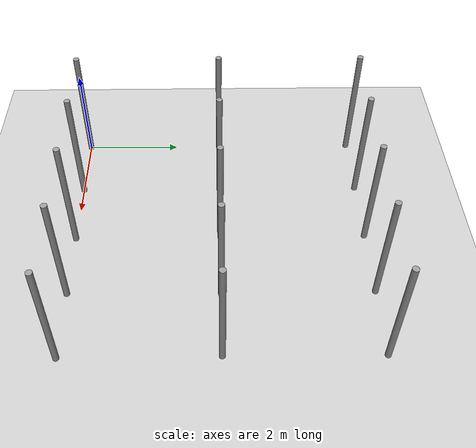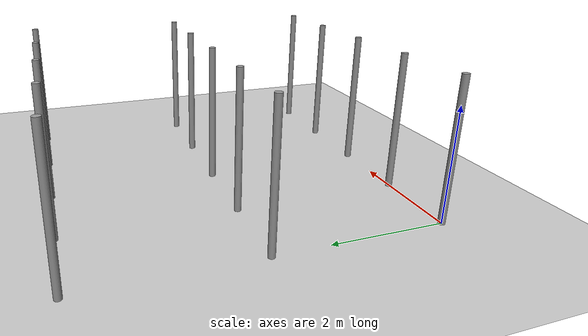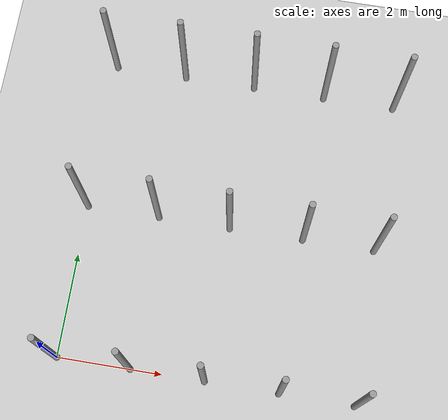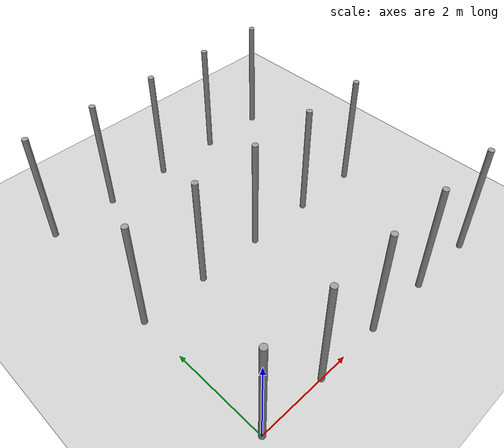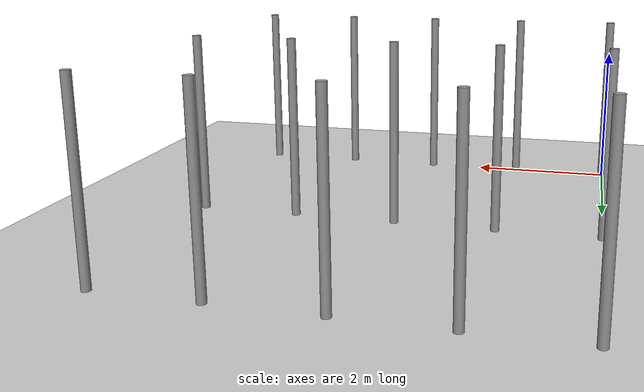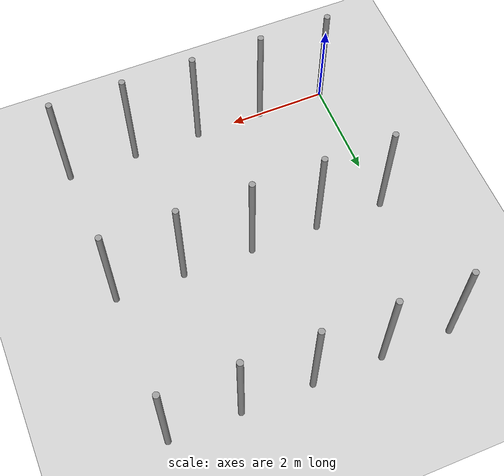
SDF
<sdf version="1.6">
 <world name="default">
  <model name="ground_plane">
   <static>1</static>
   <link name="link">
    <collision name="collision">
     <geometry><plane><normal>0 0 1</normal><size>100 100</size></plane></geometry>
     <surface><friction><ode><mu>100</mu><mu2>50</mu2></ode></friction></surface>
    </collision>
    <visual name="visual">
     <cast_shadows>0</cast_shadows>
     <geometry><plane><normal>0 0 1</normal><size>100 100</size></plane></geometry>
     <material>
      <script><uri>file://media/materials/scripts/gazebo.material</uri><name>Gazebo/Grey</name></script>
     </material>
    </visual>
   </link>
  </model>
  <model name="pole_8">
   <link name="link_0">
    <inertial>
     <mass>0.0364582</mass>
     <inertia>
      <ixx>0.00312124</ixx>
      <ixy>0</ixy>
      <ixz>0</ixz>
      <iyy>0.00312124</iyy>
      <iyz>0</iyz>
      <izz>0.00016615</izz>
     </inertia>
    </inertial>
    <visual name="visual">
     <geometry><cylinder><radius>0.06</radius><length>2.5</length></cylinder></geometry>
     <material>
      <lighting>1</lighting>
      <script><uri>file://media/materials/scripts/gazebo.material</uri><name>Gazebo/Grey</name></script>
      <ambient>0.3 0.3 0.3 1</ambient>
      <diffuse>0.7 0.7 0.7 1</diffuse>
      <specular>0.01 0.01 0.01 1</specular>
      <emissive>0 0 0 1</emissive>
      <shader type="vertex"><normal_map>__default__</normal_map></shader>
     </material>
    </visual>
    <collision name="collision">
     <geometry><cylinder><radius>0.06</radius><length>2.5</length></cylinder></geometry>
     <surface>
      <friction>
       <ode><mu>1</mu><mu2>1</mu2><fdir1>0 0 0</fdir1><slip1>0</slip1><slip2>0</slip2></ode>
       <torsional>
        <coefficient>1</coefficient>
        <patch_radius>0</patch_radius>
        <surface_radius>0</surface_radius>
        <use_patch_radius>1</use_patch_radius>
        <ode><slip>0</slip></ode>
       </torsional>
      </friction>
      <bounce><restitution_coefficient>0</restitution_coefficient><threshold>1e+06</threshold></bounce>
      <contact>
       <collide_without_contact>0</collide_without_contact>
       <collide_without_contact_bitmask>1</collide_without_contact_bitmask>
       <collide_bitmask>1</collide_bitmask>
       <ode>
        <soft_cfm>0</soft_cfm>
        <soft_erp>0.2</soft_erp>
        <kp>1e+13</kp>
        <kd>1</kd>
        <max_vel>0.01</max_vel>
        <min_depth>0</min_depth>
       </ode>
       <bullet>
        <split_impulse>1</split_impulse>
        <split_impulse_penetration_threshold>-0.01</split_impulse_penetration_threshold>
        <soft_cfm>0</soft_cfm>
        <soft_erp>0.2</soft_erp>
        <kp>1e+13</kp>
        <kd>1</kd>
       </bullet>
      </contact>
     </surface>
    </collision>
   </link>
   <static>0</static>
   <pose>1.40422 0.001389 1.24999 0 1e-06 -0.018586</pose>
  </model>
  <model name="pole_9">
   <link name="link_0">
    <inertial>
     <mass>0.0364582</mass>
     <inertia>
      <ixx>0.00312124</ixx>
      <ixy>0</ixy>
      <ixz>0</ixz>
      <iyy>0.00312124</iyy>
      <iyz>0</iyz>
      <izz>0.00016615</izz>
     </inertia>
    </inertial>
    <visual name="visual">
     <geometry><cylinder><radius>0.06</radius><length>2.5</length></cylinder></geometry>
     <material>
      <lighting>1</lighting>
      <script><uri>file://media/materials/scripts/gazebo.material</uri><name>Gazebo/Grey</name></script>
      <ambient>0.3 0.3 0.3 1</ambient>
      <diffuse>0.7 0.7 0.7 1</diffuse>
      <specular>0.01 0.01 0.01 1</specular>
      <emissive>0 0 0 1</emissive>
      <shader type="vertex"><normal_map>__default__</normal_map></shader>
     </material>
    </visual>
    <collision name="collision">
     <geometry><cylinder><radius>0.06</radius><length>2.5</length></cylinder></geometry>
     <surface>
      <friction>
       <ode><mu>1</mu><mu2>1</mu2><fdir1>0 0 0</fdir1><slip1>0</slip1><slip2>0</slip2></ode>
       <torsional>
        <coefficient>1</coefficient>
        <patch_radius>0</patch_radius>
        <surface_radius>0</surface_radius>
        <use_patch_radius>1</use_patch_radius>
        <ode><slip>0</slip></ode>
       </torsional>
      </friction>
      <bounce><restitution_coefficient>0</restitution_coefficient><threshold>1e+06</threshold></bounce>
      <contact>
       <collide_without_contact>0</collide_without_contact>
       <collide_without_contact_bitmask>1</collide_without_contact_bitmask>
       <collide_bitmask>1</collide_bitmask>
       <ode>
        <soft_cfm>0</soft_cfm>
        <soft_erp>0.2</soft_erp>
        <kp>1e+13</kp>
        <kd>1</kd>
        <max_vel>0.01</max_vel>
        <min_depth>0</min_depth>
       </ode>
       <bullet>
        <split_impulse>1</split_impulse>
        <split_impulse_penetration_threshold>-0.01</split_impulse_penetration_threshold>
        <soft_cfm>0</soft_cfm>
        <soft_erp>0.2</soft_erp>
        <kp>1e+13</kp>
        <kd>1</kd>
       </bullet>
      </contact>
     </surface>
    </collision>
   </link>
   <static>0</static>
   <pose>2.80805 0.001719 1.25 -1e-06 1e-06 -0.038742</pose>
  </model>
  <model name="pole_10">
   <link name="link_0">
    <inertial>
     <mass>0.0364582</mass>
     <inertia>
      <ixx>0.00312124</ixx>
      <ixy>0</ixy>
      <ixz>0</ixz>
      <iyy>0.00312124</iyy>
      <iyz>0</iyz>
      <izz>0.00016615</izz>
     </inertia>
    </inertial>
    <visual name="visual">
     <geometry><cylinder><radius>0.06</radius><length>2.5</length></cylinder></geometry>
     <material>
      <lighting>1</lighting>
      <script><uri>file://media/materials/scripts/gazebo.material</uri><name>Gazebo/Grey</name></script>
      <ambient>0.3 0.3 0.3 1</ambient>
      <diffuse>0.7 0.7 0.7 1</diffuse>
      <specular>0.01 0.01 0.01 1</specular>
      <emissive>0 0 0 1</emissive>
      <shader type="vertex"><normal_map>__default__</normal_map></shader>
     </material>
    </visual>
    <collision name="collision">
     <geometry><cylinder><radius>0.06</radius><length>2.5</length></cylinder></geometry>
     <surface>
      <friction>
       <ode><mu>1</mu><mu2>1</mu2><fdir1>0 0 0</fdir1><slip1>0</slip1><slip2>0</slip2></ode>
       <torsional>
        <coefficient>1</coefficient>
        <patch_radius>0</patch_radius>
        <surface_radius>0</surface_radius>
        <use_patch_radius>1</use_patch_radius>
        <ode><slip>0</slip></ode>
       </torsional>
      </friction>
      <bounce><restitution_coefficient>0</restitution_coefficient><threshold>1e+06</threshold></bounce>
      <contact>
       <collide_without_contact>0</collide_without_contact>
       <collide_without_contact_bitmask>1</collide_without_contact_bitmask>
       <collide_bitmask>1</collide_bitmask>
       <ode>
        <soft_cfm>0</soft_cfm>
        <soft_erp>0.2</soft_erp>
        <kp>1e+13</kp>
        <kd>1</kd>
        <max_vel>0.01</max_vel>
        <min_depth>0</min_depth>
       </ode>
       <bullet>
        <split_impulse>1</split_impulse>
        <split_impulse_penetration_threshold>-0.01</split_impulse_penetration_threshold>
        <soft_cfm>0</soft_cfm>
        <soft_erp>0.2</soft_erp>
        <kp>1e+13</kp>
        <kd>1</kd>
       </bullet>
      </contact>
     </surface>
    </collision>
   </link>
   <static>0</static>
   <pose>4.20397 0.001623 1.24999 -1e-06 0 -0.022289</pose>
  </model>
  <model name="pole_11">
   <link name="link_0">
    <inertial>
     <mass>0.0364582</mass>
     <inertia>
      <ixx>0.00312124</ixx>
      <ixy>0</ixy>
      <ixz>0</ixz>
      <iyy>0.00312124</iyy>
      <iyz>0</iyz>
      <izz>0.00016615</izz>
     </inertia>
    </inertial>
    <visual name="visual">
     <geometry><cylinder><radius>0.06</radius><length>2.5</length></cylinder></geometry>
     <material>
      <lighting>1</lighting>
      <script><uri>file://media/materials/scripts/gazebo.material</uri><name>Gazebo/Grey</name></script>
      <ambient>0.3 0.3 0.3 1</ambient>
      <diffuse>0.7 0.7 0.7 1</diffuse>
      <specular>0.01 0.01 0.01 1</specular>
      <emissive>0 0 0 1</emissive>
      <shader type="vertex"><normal_map>__default__</normal_map></shader>
     </material>
    </visual>
    <collision name="collision">
     <geometry><cylinder><radius>0.06</radius><length>2.5</length></cylinder></geometry>
     <surface>
      <friction>
       <ode><mu>1</mu><mu2>1</mu2><fdir1>0 0 0</fdir1><slip1>0</slip1><slip2>0</slip2></ode>
       <torsional>
        <coefficient>1</coefficient>
        <patch_radius>0</patch_radius>
        <surface_radius>0</surface_radius>
        <use_patch_radius>1</use_patch_radius>
        <ode><slip>0</slip></ode>
       </torsional>
      </friction>
      <bounce><restitution_coefficient>0</restitution_coefficient><threshold>1e+06</threshold></bounce>
      <contact>
       <collide_without_contact>0</collide_without_contact>
       <collide_without_contact_bitmask>1</collide_without_contact_bitmask>
       <collide_bitmask>1</collide_bitmask>
       <ode>
        <soft_cfm>0</soft_cfm>
        <soft_erp>0.2</soft_erp>
        <kp>1e+13</kp>
        <kd>1</kd>
        <max_vel>0.01</max_vel>
        <min_depth>0</min_depth>
       </ode>
       <bullet>
        <split_impulse>1</split_impulse>
        <split_impulse_penetration_threshold>-0.01</split_impulse_penetration_threshold>
        <soft_cfm>0</soft_cfm>
        <soft_erp>0.2</soft_erp>
        <kp>1e+13</kp>
        <kd>1</kd>
       </bullet>
      </contact>
     </surface>
    </collision>
   </link>
   <static>0</static>
   <pose>5.61623 0.001365 1.24999 -2e-06 -3e-06 -0.020735</pose>
  </model>
  <model name="pole_11_clone">
   <link name="link_0">
    <inertial>
     <mass>0.0364582</mass>
     <inertia>
      <ixx>0.00312124</ixx>
      <ixy>0</ixy>
      <ixz>0</ixz>
      <iyy>0.00312124</iyy>
      <iyz>0</iyz>
      <izz>0.00016615</izz>
     </inertia>
    </inertial>
    <visual name="visual">
     <geometry><cylinder><radius>0.06</radius><length>2.5</length></cylinder></geometry>
     <material>
      <lighting>1</lighting>
      <script><uri>file://media/materials/scripts/gazebo.material</uri><name>Gazebo/Grey</name></script>
      <ambient>0.3 0.3 0.3 1</ambient>
      <diffuse>0.7 0.7 0.7 1</diffuse>
      <specular>0.01 0.01 0.01 1</specular>
      <emissive>0 0 0 1</emissive>
      <shader type="vertex"><normal_map>__default__</normal_map></shader>
     </material>
    </visual>
    <collision name="collision">
     <geometry><cylinder><radius>0.06</radius><length>2.5</length></cylinder></geometry>
     <surface>
      <friction>
       <ode><mu>1</mu><mu2>1</mu2><fdir1>0 0 0</fdir1><slip1>0</slip1><slip2>0</slip2></ode>
       <torsional>
        <coefficient>1</coefficient>
        <patch_radius>0</patch_radius>
        <surface_radius>0</surface_radius>
        <use_patch_radius>1</use_patch_radius>
        <ode><slip>0</slip></ode>
       </torsional>
      </friction>
      <bounce><restitution_coefficient>0</restitution_coefficient><threshold>1e+06</threshold></bounce>
      <contact>
       <collide_without_contact>0</collide_without_contact>
       <collide_without_contact_bitmask>1</collide_without_contact_bitmask>
       <collide_bitmask>1</collide_bitmask>
       <ode>
        <soft_cfm>0</soft_cfm>
        <soft_erp>0.2</soft_erp>
        <kp>1e+13</kp>
        <kd>1</kd>
        <max_vel>0.01</max_vel>
        <min_depth>0</min_depth>
       </ode>
       <bullet>
        <split_impulse>1</split_impulse>
        <split_impulse_penetration_threshold>-0.01</split_impulse_penetration_threshold>
        <soft_cfm>0</soft_cfm>
        <soft_erp>0.2</soft_erp>
        <kp>1e+13</kp>
        <kd>1</kd>
       </bullet>
      </contact>
     </surface>
    </collision>
   </link>
   <static>0</static>
   <pose>0.000262 2.98162 1.25 -0 1e-06 -0.021271</pose>
  </model>
  <model name="pole">
   <link name="link_0">
    <inertial>
     <mass>0.0364582</mass>
     <inertia>
      <ixx>0.00312124</ixx>
      <ixy>0</ixy>
      <ixz>0</ixz>
      <iyy>0.00312124</iyy>
      <iyz>0</iyz>
      <izz>0.00016615</izz>
     </inertia>
    </inertial>
    <visual name="visual">
     <geometry><cylinder><radius>0.06</radius><length>2.5</length></cylinder></geometry>
     <material>
      <lighting>1</lighting>
      <script><uri>file://media/materials/scripts/gazebo.material</uri><name>Gazebo/Grey</name></script>
      <ambient>0.3 0.3 0.3 1</ambient>
      <diffuse>0.7 0.7 0.7 1</diffuse>
      <specular>0.01 0.01 0.01 1</specular>
      <emissive>0 0 0 1</emissive>
      <shader type="vertex"><normal_map>__default__</normal_map></shader>
     </material>
    </visual>
    <collision name="collision">
     <geometry><cylinder><radius>0.06</radius><length>2.5</length></cylinder></geometry>
     <surface>
      <friction>
       <ode><mu>1</mu><mu2>1</mu2><fdir1>0 0 0</fdir1><slip1>0</slip1><slip2>0</slip2></ode>
       <torsional>
        <coefficient>1</coefficient>
        <patch_radius>0</patch_radius>
        <surface_radius>0</surface_radius>
        <use_patch_radius>1</use_patch_radius>
        <ode><slip>0</slip></ode>
       </torsional>
      </friction>
      <bounce><restitution_coefficient>0</restitution_coefficient><threshold>1e+06</threshold></bounce>
      <contact>
       <collide_without_contact>0</collide_without_contact>
       <collide_without_contact_bitmask>1</collide_without_contact_bitmask>
       <collide_bitmask>1</collide_bitmask>
       <ode>
        <soft_cfm>0</soft_cfm>
        <soft_erp>0.2</soft_erp>
        <kp>1e+13</kp>
        <kd>1</kd>
        <max_vel>0.01</max_vel>
        <min_depth>0</min_depth>
       </ode>
       <bullet>
        <split_impulse>1</split_impulse>
        <split_impulse_penetration_threshold>-0.01</split_impulse_penetration_threshold>
        <soft_cfm>0</soft_cfm>
        <soft_erp>0.2</soft_erp>
        <kp>1e+13</kp>
        <kd>1</kd>
       </bullet>
      </contact>
     </surface>
    </collision>
   </link>
   <static>0</static>
   <pose>0.006691 5.96132 1.25 -0 2e-06 -0.015717</pose>
  </model>
  <model name="pole_3">
   <link name="link_0">
    <inertial>
     <mass>0.0364582</mass>
     <inertia>
      <ixx>0.00312124</ixx>
      <ixy>0</ixy>
      <ixz>0</ixz>
      <iyy>0.00312124</iyy>
      <iyz>0</iyz>
      <izz>0.00016615</izz>
     </inertia>
    </inertial>
    <visual name="visual">
     <geometry><cylinder><radius>0.06</radius><length>2.5</length></cylinder></geometry>
     <material>
      <lighting>1</lighting>
      <script><uri>file://media/materials/scripts/gazebo.material</uri><name>Gazebo/Grey</name></script>
      <ambient>0.3 0.3 0.3 1</ambient>
      <diffuse>0.7 0.7 0.7 1</diffuse>
      <specular>0.01 0.01 0.01 1</specular>
      <emissive>0 0 0 1</emissive>
      <shader type="vertex"><normal_map>__default__</normal_map></shader>
     </material>
    </visual>
    <collision name="collision">
     <geometry><cylinder><radius>0.06</radius><length>2.5</length></cylinder></geometry>
     <surface>
      <friction>
       <ode><mu>1</mu><mu2>1</mu2><fdir1>0 0 0</fdir1><slip1>0</slip1><slip2>0</slip2></ode>
       <torsional>
        <coefficient>1</coefficient>
        <patch_radius>0</patch_radius>
        <surface_radius>0</surface_radius>
        <use_patch_radius>1</use_patch_radius>
        <ode><slip>0</slip></ode>
       </torsional>
      </friction>
      <bounce><restitution_coefficient>0</restitution_coefficient><threshold>1e+06</threshold></bounce>
      <contact>
       <collide_without_contact>0</collide_without_contact>
       <collide_without_contact_bitmask>1</collide_without_contact_bitmask>
       <collide_bitmask>1</collide_bitmask>
       <ode>
        <soft_cfm>0</soft_cfm>
        <soft_erp>0.2</soft_erp>
        <kp>1e+13</kp>
        <kd>1</kd>
        <max_vel>0.01</max_vel>
        <min_depth>0</min_depth>
       </ode>
       <bullet>
        <split_impulse>1</split_impulse>
        <split_impulse_penetration_threshold>-0.01</split_impulse_penetration_threshold>
        <soft_cfm>0</soft_cfm>
        <soft_erp>0.2</soft_erp>
        <kp>1e+13</kp>
        <kd>1</kd>
       </bullet>
      </contact>
     </surface>
    </collision>
   </link>
   <static>0</static>
   <pose>1.40473 2.98122 1.24999 0 -3e-06 -0.01526</pose>
  </model>
  <model name="pole_5">
   <link name="link_0">
    <inertial>
     <mass>0.0364582</mass>
     <inertia>
      <ixx>0.00312124</ixx>
      <ixy>0</ixy>
      <ixz>0</ixz>
      <iyy>0.00312124</iyy>
      <iyz>0</iyz>
      <izz>0.00016615</izz>
     </inertia>
    </inertial>
    <visual name="visual">
     <geometry><cylinder><radius>0.06</radius><length>2.5</length></cylinder></geometry>
     <material>
      <lighting>1</lighting>
      <script><uri>file://media/materials/scripts/gazebo.material</uri><name>Gazebo/Grey</name></script>
      <ambient>0.3 0.3 0.3 1</ambient>
      <diffuse>0.7 0.7 0.7 1</diffuse>
      <specular>0.01 0.01 0.01 1</specular>
      <emissive>0 0 0 1</emissive>
      <shader type="vertex"><normal_map>__default__</normal_map></shader>
     </material>
    </visual>
    <collision name="collision">
     <geometry><cylinder><radius>0.06</radius><length>2.5</length></cylinder></geometry>
     <surface>
      <friction>
       <ode><mu>1</mu><mu2>1</mu2><fdir1>0 0 0</fdir1><slip1>0</slip1><slip2>0</slip2></ode>
       <torsional>
        <coefficient>1</coefficient>
        <patch_radius>0</patch_radius>
        <surface_radius>0</surface_radius>
        <use_patch_radius>1</use_patch_radius>
        <ode><slip>0</slip></ode>
       </torsional>
      </friction>
      <bounce><restitution_coefficient>0</restitution_coefficient><threshold>1e+06</threshold></bounce>
      <contact>
       <collide_without_contact>0</collide_without_contact>
       <collide_without_contact_bitmask>1</collide_without_contact_bitmask>
       <collide_bitmask>1</collide_bitmask>
       <ode>
        <soft_cfm>0</soft_cfm>
        <soft_erp>0.2</soft_erp>
        <kp>1e+13</kp>
        <kd>1</kd>
        <max_vel>0.01</max_vel>
        <min_depth>0</min_depth>
       </ode>
       <bullet>
        <split_impulse>1</split_impulse>
        <split_impulse_penetration_threshold>-0.01</split_impulse_penetration_threshold>
        <soft_cfm>0</soft_cfm>
        <soft_erp>0.2</soft_erp>
        <kp>1e+13</kp>
        <kd>1</kd>
       </bullet>
      </contact>
     </surface>
    </collision>
   </link>
   <static>0</static>
   <pose>2.79583 2.98116 1.24999 0 1e-06 -0.014543</pose>
  </model>
  <model name="pole_6">
   <link name="link_0">
    <inertial>
     <mass>0.0364582</mass>
     <inertia>
      <ixx>0.00312124</ixx>
      <ixy>0</ixy>
      <ixz>0</ixz>
      <iyy>0.00312124</iyy>
      <iyz>0</iyz>
      <izz>0.00016615</izz>
     </inertia>
    </inertial>
    <visual name="visual">
     <geometry><cylinder><radius>0.06</radius><length>2.5</length></cylinder></geometry>
     <material>
      <lighting>1</lighting>
      <script><uri>file://media/materials/scripts/gazebo.material</uri><name>Gazebo/Grey</name></script>
      <ambient>0.3 0.3 0.3 1</ambient>
      <diffuse>0.7 0.7 0.7 1</diffuse>
      <specular>0.01 0.01 0.01 1</specular>
      <emissive>0 0 0 1</emissive>
      <shader type="vertex"><normal_map>__default__</normal_map></shader>
     </material>
    </visual>
    <collision name="collision">
     <geometry><cylinder><radius>0.06</radius><length>2.5</length></cylinder></geometry>
     <surface>
      <friction>
       <ode><mu>1</mu><mu2>1</mu2><fdir1>0 0 0</fdir1><slip1>0</slip1><slip2>0</slip2></ode>
       <torsional>
        <coefficient>1</coefficient>
        <patch_radius>0</patch_radius>
        <surface_radius>0</surface_radius>
        <use_patch_radius>1</use_patch_radius>
        <ode><slip>0</slip></ode>
       </torsional>
      </friction>
      <bounce><restitution_coefficient>0</restitution_coefficient><threshold>1e+06</threshold></bounce>
      <contact>
       <collide_without_contact>0</collide_without_contact>
       <collide_without_contact_bitmask>1</collide_without_contact_bitmask>
       <collide_bitmask>1</collide_bitmask>
       <ode>
        <soft_cfm>0</soft_cfm>
        <soft_erp>0.2</soft_erp>
        <kp>1e+13</kp>
        <kd>1</kd>
        <max_vel>0.01</max_vel>
        <min_depth>0</min_depth>
       </ode>
       <bullet>
        <split_impulse>1</split_impulse>
        <split_impulse_penetration_threshold>-0.01</split_impulse_penetration_threshold>
        <soft_cfm>0</soft_cfm>
        <soft_erp>0.2</soft_erp>
        <kp>1e+13</kp>
        <kd>1</kd>
       </bullet>
      </contact>
     </surface>
    </collision>
   </link>
   <static>0</static>
   <pose>4.2224 2.98117 1.25 -1e-06 -0 -0.013108</pose>
  </model>
  <model name="pole_7">
   <link name="link_0">
    <inertial>
     <mass>0.0364582</mass>
     <inertia>
      <ixx>0.00312124</ixx>
      <ixy>0</ixy>
      <ixz>0</ixz>
      <iyy>0.00312124</iyy>
      <iyz>0</iyz>
      <izz>0.00016615</izz>
     </inertia>
    </inertial>
    <visual name="visual">
     <geometry><cylinder><radius>0.06</radius><length>2.5</length></cylinder></geometry>
     <material>
      <lighting>1</lighting>
      <script><uri>file://media/materials/scripts/gazebo.material</uri><name>Gazebo/Grey</name></script>
      <ambient>0.3 0.3 0.3 1</ambient>
      <diffuse>0.7 0.7 0.7 1</diffuse>
      <specular>0.01 0.01 0.01 1</specular>
      <emissive>0 0 0 1</emissive>
      <shader type="vertex"><normal_map>__default__</normal_map></shader>
     </material>
    </visual>
    <collision name="collision">
     <geometry><cylinder><radius>0.06</radius><length>2.5</length></cylinder></geometry>
     <surface>
      <friction>
       <ode><mu>1</mu><mu2>1</mu2><fdir1>0 0 0</fdir1><slip1>0</slip1><slip2>0</slip2></ode>
       <torsional>
        <coefficient>1</coefficient>
        <patch_radius>0</patch_radius>
        <surface_radius>0</surface_radius>
        <use_patch_radius>1</use_patch_radius>
        <ode><slip>0</slip></ode>
       </torsional>
      </friction>
      <bounce><restitution_coefficient>0</restitution_coefficient><threshold>1e+06</threshold></bounce>
      <contact>
       <collide_without_contact>0</collide_without_contact>
       <collide_without_contact_bitmask>1</collide_without_contact_bitmask>
       <collide_bitmask>1</collide_bitmask>
       <ode>
        <soft_cfm>0</soft_cfm>
        <soft_erp>0.2</soft_erp>
        <kp>1e+13</kp>
        <kd>1</kd>
        <max_vel>0.01</max_vel>
        <min_depth>0</min_depth>
       </ode>
       <bullet>
        <split_impulse>1</split_impulse>
        <split_impulse_penetration_threshold>-0.01</split_impulse_penetration_threshold>
        <soft_cfm>0</soft_cfm>
        <soft_erp>0.2</soft_erp>
        <kp>1e+13</kp>
        <kd>1</kd>
       </bullet>
      </contact>
     </surface>
    </collision>
   </link>
   <static>0</static>
   <pose>5.60733 2.98118 1.25 0 -1e-06 -0.013615</pose>
  </model>
  <model name="pole_12">
   <link name="link_0">
    <inertial>
     <mass>0.0364582</mass>
     <inertia>
      <ixx>0.00312124</ixx>
      <ixy>0</ixy>
      <ixz>0</ixz>
      <iyy>0.00312124</iyy>
      <iyz>0</iyz>
      <izz>0.00016615</izz>
     </inertia>
    </inertial>
    <visual name="visual">
     <geometry><cylinder><radius>0.06</radius><length>2.5</length></cylinder></geometry>
     <material>
      <lighting>1</lighting>
      <script><uri>file://media/materials/scripts/gazebo.material</uri><name>Gazebo/Grey</name></script>
      <ambient>0.3 0.3 0.3 1</ambient>
      <diffuse>0.7 0.7 0.7 1</diffuse>
      <specular>0.01 0.01 0.01 1</specular>
      <emissive>0 0 0 1</emissive>
      <shader type="vertex"><normal_map>__default__</normal_map></shader>
     </material>
    </visual>
    <collision name="collision">
     <geometry><cylinder><radius>0.06</radius><length>2.5</length></cylinder></geometry>
     <surface>
      <friction>
       <ode><mu>1</mu><mu2>1</mu2><fdir1>0 0 0</fdir1><slip1>0</slip1><slip2>0</slip2></ode>
       <torsional>
        <coefficient>1</coefficient>
        <patch_radius>0</patch_radius>
        <surface_radius>0</surface_radius>
        <use_patch_radius>1</use_patch_radius>
        <ode><slip>0</slip></ode>
       </torsional>
      </friction>
      <bounce><restitution_coefficient>0</restitution_coefficient><threshold>1e+06</threshold></bounce>
      <contact>
       <collide_without_contact>0</collide_without_contact>
       <collide_without_contact_bitmask>1</collide_without_contact_bitmask>
       <collide_bitmask>1</collide_bitmask>
       <ode>
        <soft_cfm>0</soft_cfm>
        <soft_erp>0.2</soft_erp>
        <kp>1e+13</kp>
        <kd>1</kd>
        <max_vel>0.01</max_vel>
        <min_depth>0</min_depth>
       </ode>
       <bullet>
        <split_impulse>1</split_impulse>
        <split_impulse_penetration_threshold>-0.01</split_impulse_penetration_threshold>
        <soft_cfm>0</soft_cfm>
        <soft_erp>0.2</soft_erp>
        <kp>1e+13</kp>
        <kd>1</kd>
       </bullet>
      </contact>
     </surface>
    </collision>
   </link>
   <static>0</static>
   <pose>1.4136 5.96116 1.25 -1e-06 -2e-06 -0.011188</pose>
  </model>
  <model name="pole_13">
   <link name="link_0">
    <inertial>
     <mass>0.0364582</mass>
     <inertia>
      <ixx>0.00312124</ixx>
      <ixy>0</ixy>
      <ixz>0</ixz>
      <iyy>0.00312124</iyy>
      <iyz>0</iyz>
      <izz>0.00016615</izz>
     </inertia>
    </inertial>
    <visual name="visual">
     <geometry><cylinder><radius>0.06</radius><length>2.5</length></cylinder></geometry>
     <material>
      <lighting>1</lighting>
      <script><uri>file://media/materials/scripts/gazebo.material</uri><name>Gazebo/Grey</name></script>
      <ambient>0.3 0.3 0.3 1</ambient>
      <diffuse>0.7 0.7 0.7 1</diffuse>
      <specular>0.01 0.01 0.01 1</specular>
      <emissive>0 0 0 1</emissive>
      <shader type="vertex"><normal_map>__default__</normal_map></shader>
     </material>
    </visual>
    <collision name="collision">
     <geometry><cylinder><radius>0.06</radius><length>2.5</length></cylinder></geometry>
     <surface>
      <friction>
       <ode><mu>1</mu><mu2>1</mu2><fdir1>0 0 0</fdir1><slip1>0</slip1><slip2>0</slip2></ode>
       <torsional>
        <coefficient>1</coefficient>
        <patch_radius>0</patch_radius>
        <surface_radius>0</surface_radius>
        <use_patch_radius>1</use_patch_radius>
        <ode><slip>0</slip></ode>
       </torsional>
      </friction>
      <bounce><restitution_coefficient>0</restitution_coefficient><threshold>1e+06</threshold></bounce>
      <contact>
       <collide_without_contact>0</collide_without_contact>
       <collide_without_contact_bitmask>1</collide_without_contact_bitmask>
       <collide_bitmask>1</collide_bitmask>
       <ode>
        <soft_cfm>0</soft_cfm>
        <soft_erp>0.2</soft_erp>
        <kp>1e+13</kp>
        <kd>1</kd>
        <max_vel>0.01</max_vel>
        <min_depth>0</min_depth>
       </ode>
       <bullet>
        <split_impulse>1</split_impulse>
        <split_impulse_penetration_threshold>-0.01</split_impulse_penetration_threshold>
        <soft_cfm>0</soft_cfm>
        <soft_erp>0.2</soft_erp>
        <kp>1e+13</kp>
        <kd>1</kd>
       </bullet>
      </contact>
     </surface>
    </collision>
   </link>
   <static>0</static>
   <pose>2.80801 5.96111 1.24999 -0 1e-06 -0.010683</pose>
  </model>
  <model name="pole_14">
   <link name="link_0">
    <inertial>
     <mass>0.0364582</mass>
     <inertia>
      <ixx>0.00312124</ixx>
      <ixy>0</ixy>
      <ixz>0</ixz>
      <iyy>0.00312124</iyy>
      <iyz>0</iyz>
      <izz>0.00016615</izz>
     </inertia>
    </inertial>
    <visual name="visual">
     <geometry><cylinder><radius>0.06</radius><length>2.5</length></cylinder></geometry>
     <material>
      <lighting>1</lighting>
      <script><uri>file://media/materials/scripts/gazebo.material</uri><name>Gazebo/Grey</name></script>
      <ambient>0.3 0.3 0.3 1</ambient>
      <diffuse>0.7 0.7 0.7 1</diffuse>
      <specular>0.01 0.01 0.01 1</specular>
      <emissive>0 0 0 1</emissive>
      <shader type="vertex"><normal_map>__default__</normal_map></shader>
     </material>
    </visual>
    <collision name="collision">
     <geometry><cylinder><radius>0.06</radius><length>2.5</length></cylinder></geometry>
     <surface>
      <friction>
       <ode><mu>1</mu><mu2>1</mu2><fdir1>0 0 0</fdir1><slip1>0</slip1><slip2>0</slip2></ode>
       <torsional>
        <coefficient>1</coefficient>
        <patch_radius>0</patch_radius>
        <surface_radius>0</surface_radius>
        <use_patch_radius>1</use_patch_radius>
        <ode><slip>0</slip></ode>
       </torsional>
      </friction>
      <bounce><restitution_coefficient>0</restitution_coefficient><threshold>1e+06</threshold></bounce>
      <contact>
       <collide_without_contact>0</collide_without_contact>
       <collide_without_contact_bitmask>1</collide_without_contact_bitmask>
       <collide_bitmask>1</collide_bitmask>
       <ode>
        <soft_cfm>0</soft_cfm>
        <soft_erp>0.2</soft_erp>
        <kp>1e+13</kp>
        <kd>1</kd>
        <max_vel>0.01</max_vel>
        <min_depth>0</min_depth>
       </ode>
       <bullet>
        <split_impulse>1</split_impulse>
        <split_impulse_penetration_threshold>-0.01</split_impulse_penetration_threshold>
        <soft_cfm>0</soft_cfm>
        <soft_erp>0.2</soft_erp>
        <kp>1e+13</kp>
        <kd>1</kd>
       </bullet>
      </contact>
     </surface>
    </collision>
   </link>
   <static>0</static>
   <pose>4.21951 5.96119 1.25 -1e-06 1e-06 -0.010415</pose>
  </model>
  <model name="pole_15">
   <link name="link_0">
    <inertial>
     <mass>0.0364582</mass>
     <inertia>
      <ixx>0.00312124</ixx>
      <ixy>0</ixy>
      <ixz>0</ixz>
      <iyy>0.00312124</iyy>
      <iyz>0</iyz>
      <izz>0.00016615</izz>
     </inertia>
    </inertial>
    <visual name="visual">
     <geometry><cylinder><radius>0.06</radius><length>2.5</length></cylinder></geometry>
     <material>
      <lighting>1</lighting>
      <script><uri>file://media/materials/scripts/gazebo.material</uri><name>Gazebo/Grey</name></script>
      <ambient>0.3 0.3 0.3 1</ambient>
      <diffuse>0.7 0.7 0.7 1</diffuse>
      <specular>0.01 0.01 0.01 1</specular>
      <emissive>0 0 0 1</emissive>
      <shader type="vertex"><normal_map>__default__</normal_map></shader>
     </material>
    </visual>
    <collision name="collision">
     <geometry><cylinder><radius>0.06</radius><length>2.5</length></cylinder></geometry>
     <surface>
      <friction>
       <ode><mu>1</mu><mu2>1</mu2><fdir1>0 0 0</fdir1><slip1>0</slip1><slip2>0</slip2></ode>
       <torsional>
        <coefficient>1</coefficient>
        <patch_radius>0</patch_radius>
        <surface_radius>0</surface_radius>
        <use_patch_radius>1</use_patch_radius>
        <ode><slip>0</slip></ode>
       </torsional>
      </friction>
      <bounce><restitution_coefficient>0</restitution_coefficient><threshold>1e+06</threshold></bounce>
      <contact>
       <collide_without_contact>0</collide_without_contact>
       <collide_without_contact_bitmask>1</collide_without_contact_bitmask>
       <collide_bitmask>1</collide_bitmask>
       <ode>
        <soft_cfm>0</soft_cfm>
        <soft_erp>0.2</soft_erp>
        <kp>1e+13</kp>
        <kd>1</kd>
        <max_vel>0.01</max_vel>
        <min_depth>0</min_depth>
       </ode>
       <bullet>
        <split_impulse>1</split_impulse>
        <split_impulse_penetration_threshold>-0.01</split_impulse_penetration_threshold>
        <soft_cfm>0</soft_cfm>
        <soft_erp>0.2</soft_erp>
        <kp>1e+13</kp>
        <kd>1</kd>
       </bullet>
      </contact>
     </surface>
    </collision>
   </link>
   <static>0</static>
   <pose>5.62352 5.96113 1.24999 0 -1e-06 -0.01155</pose>
  </model>
  <model name="pole_4">
   <link name="link_0">
    <inertial>
     <mass>0.0364582</mass>
     <inertia>
      <ixx>0.00312124</ixx>
      <ixy>0</ixy>
      <ixz>0</ixz>
      <iyy>0.00312124</iyy>
      <iyz>0</iyz>
      <izz>0.00016615</izz>
     </inertia>
    </inertial>
    <visual name="visual">
     <geometry><cylinder><radius>0.06</radius><length>2.5</length></cylinder></geometry>
     <material>
      <lighting>1</lighting>
      <script><uri>file://media/materials/scripts/gazebo.material</uri><name>Gazebo/Grey</name></script>
      <ambient>0.3 0.3 0.3 1</ambient>
      <diffuse>0.7 0.7 0.7 1</diffuse>
      <specular>0.01 0.01 0.01 1</specular>
      <emissive>0 0 0 1</emissive>
      <shader type="vertex"><normal_map>__default__</normal_map></shader>
     </material>
    </visual>
    <collision name="collision">
     <geometry><cylinder><radius>0.06</radius><length>2.5</length></cylinder></geometry>
     <surface>
      <friction>
       <ode><mu>1</mu><mu2>1</mu2><fdir1>0 0 0</fdir1><slip1>0</slip1><slip2>0</slip2></ode>
       <torsional>
        <coefficient>1</coefficient>
        <patch_radius>0</patch_radius>
        <surface_radius>0</surface_radius>
        <use_patch_radius>1</use_patch_radius>
        <ode><slip>0</slip></ode>
       </torsional>
      </friction>
      <bounce><restitution_coefficient>0</restitution_coefficient><threshold>1e+06</threshold></bounce>
      <contact>
       <collide_without_contact>0</collide_without_contact>
       <collide_without_contact_bitmask>1</collide_without_contact_bitmask>
       <collide_bitmask>1</collide_bitmask>
       <ode>
        <soft_cfm>0</soft_cfm>
        <soft_erp>0.2</soft_erp>
        <kp>1e+13</kp>
        <kd>1</kd>
        <max_vel>0.01</max_vel>
        <min_depth>0</min_depth>
       </ode>
       <bullet>
        <split_impulse>1</split_impulse>
        <split_impulse_penetration_threshold>-0.01</split_impulse_penetration_threshold>
        <soft_cfm>0</soft_cfm>
        <soft_erp>0.2</soft_erp>
        <kp>1e+13</kp>
        <kd>1</kd>
       </bullet>
      </contact>
     </surface>
    </collision>
   </link>
   <static>0</static>
   <pose>0.007716 0.000118 1.25 0 2e-06 0.003815</pose>
  </model>
 </world>
</sdf>
